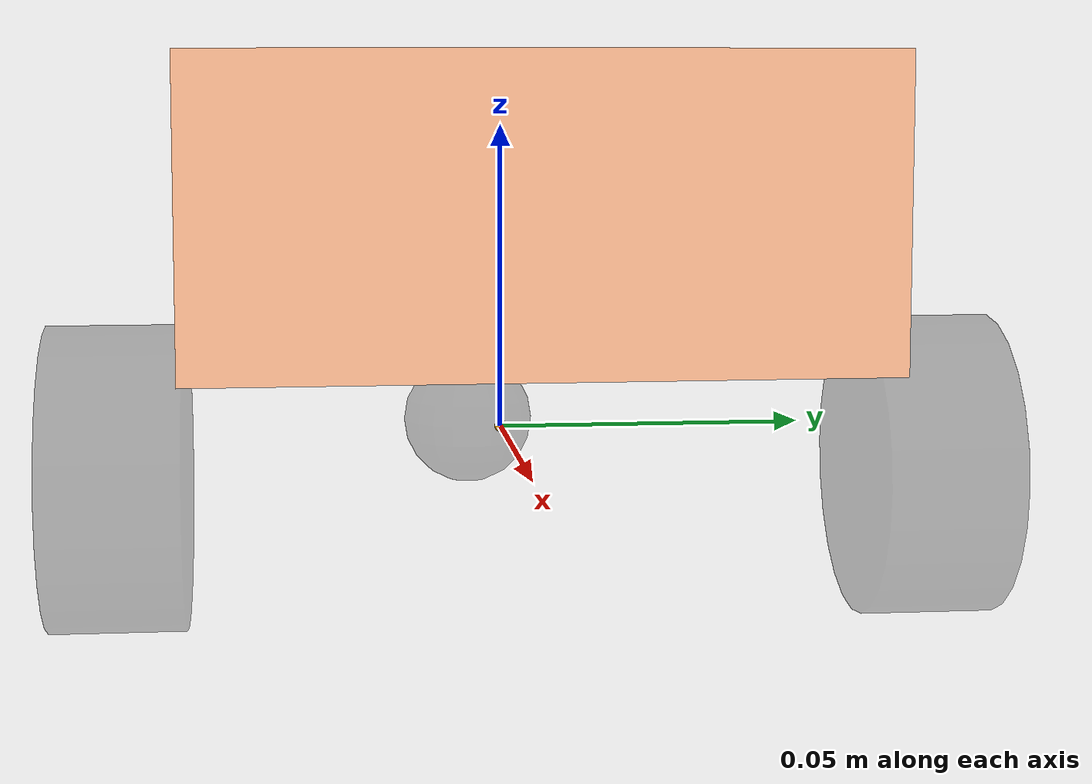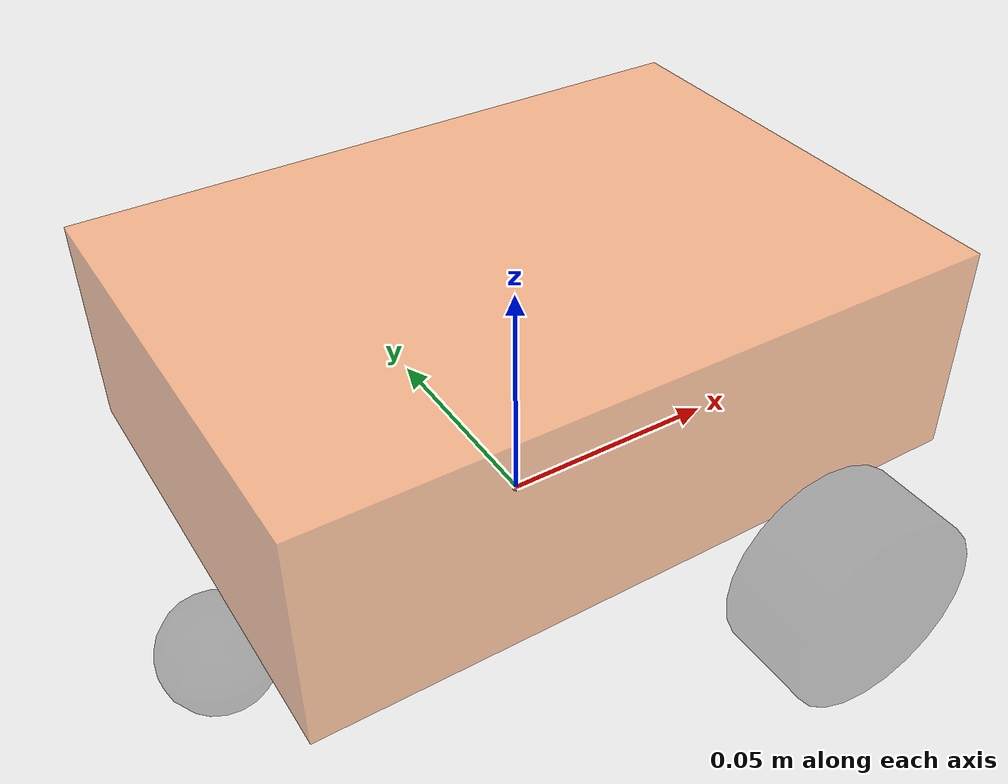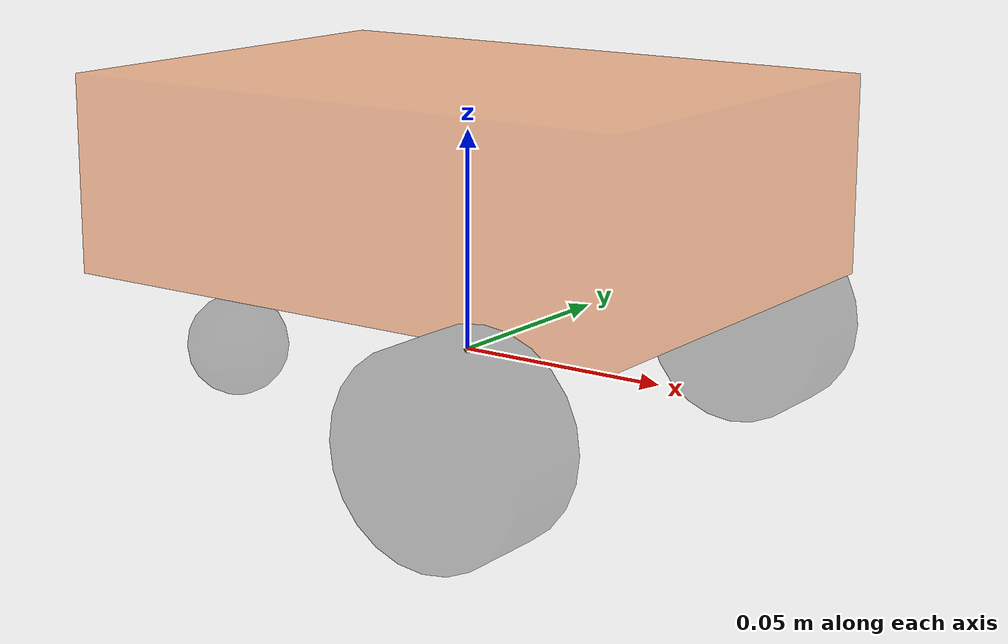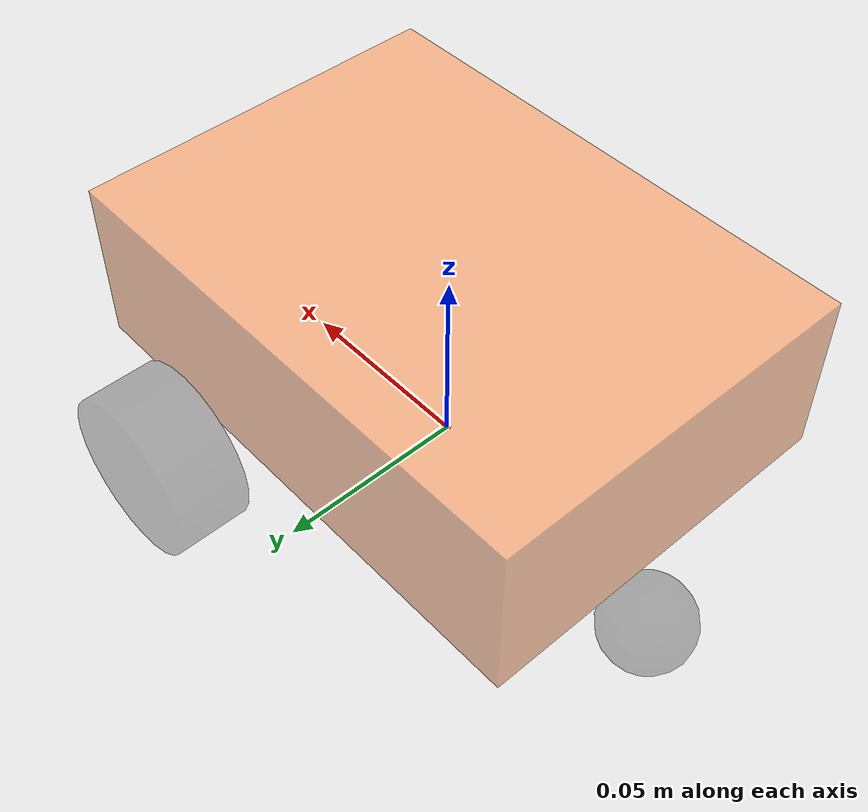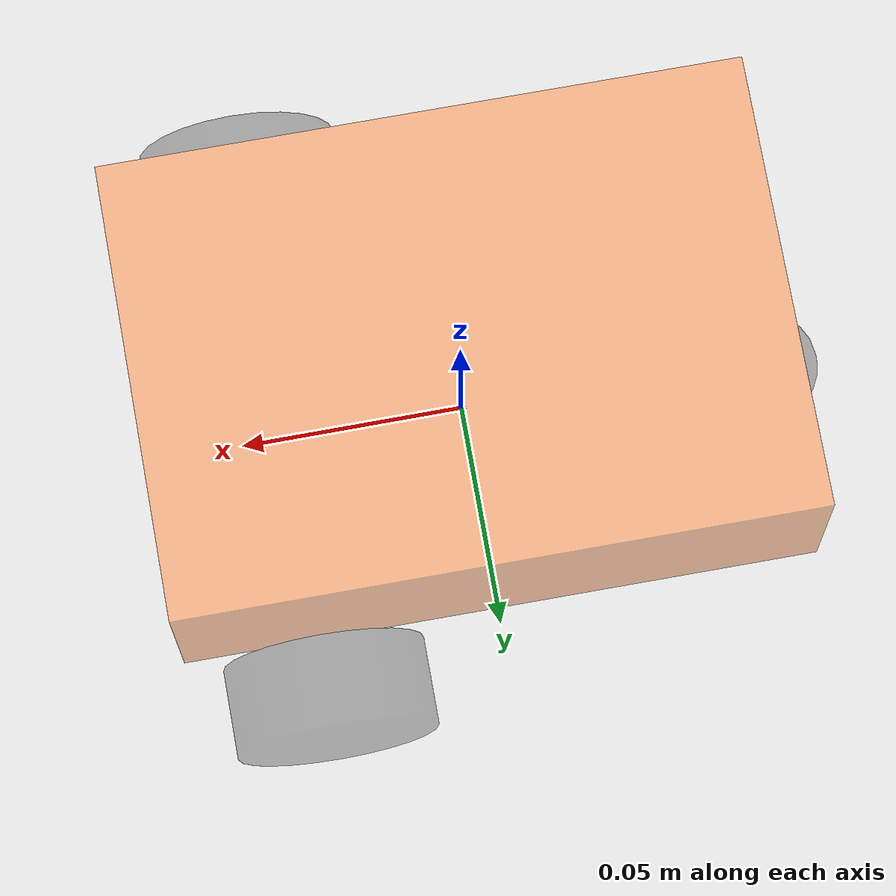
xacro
<robot name="mycar" xmlns:xacro="http://wiki.ros.org/xacro">

    <xacro:property name="footprint_radius" value="0.001" />
    <link name="base_footprint">
        <visual>
            <geometry>
                <sphere radius="${footprint_radius}" />
            </geometry>
        </visual>
    </link>

    <link name="base_link">
        <visual>
            <geometry>
                <box size="0.14 0.10 0.045" />
            </geometry>

            <origin xyz="0 0 0" rpy="0 0 0" />

            <material name="baselink_color">
                <color rgba="1.0 0.5 0.2 0.5" />
            </material>
        </visual>

    </link>

    <joint name="link2footprint" type="fixed">
        <parent link="base_footprint"  />
        <child link="base_link" />
        <origin xyz="0 0 0.04" rpy="0 0 0" />
    </joint>

    <xacro:property name="wheel_radius" value="0.0225" />
    <xacro:property name="wheel_length" value="0.02" />
    <xacro:property name="PI" value="3.1415927" />
    <xacro:property name="wheel_joint_z" value="${(0.045/2 + 0.04 - wheel_radius) * -1}" />

    <xacro:macro name="wheel_func" params="wheel_name flag">

        <link name="${wheel_name}_wheel">
            <visual>
                <geometry>
                    <cylinder radius="${wheel_radius}" length="${wheel_length}" />
                </geometry>

                <origin xyz="0 0 0" rpy="${PI / 2} 0 0" />

                <material name="wheel_color">
                    <color rgba="0 0 0 0.3" />
                </material>
            </visual>

        </link>

        <joint name="${wheel_name}2link" type="continuous">
            <parent link="base_link"  />
            <child link="${wheel_name}_wheel" />

            <origin xyz="0.04 ${0.06 * flag} ${wheel_joint_z}" rpy="0 0 0" />
            <axis xyz="0 1 0" />
        </joint>

    </xacro:macro>

    <xacro:wheel_func wheel_name="left" flag="1" />
    <xacro:wheel_func wheel_name="right" flag="-1" />

    <xacro:property name="small_wheel_radius" value="0.0125" />
    <xacro:property name="small_joint_z" value="${(0.045 / 2 + 0.04 - small_wheel_radius) * -1}" />

    <xacro:macro name="small_wheel_func" params="small_wheel_name flag">
        <link name="${small_wheel_name}_wheel">
            <visual>
                <geometry>
                    <sphere radius="${small_wheel_radius}" />
                </geometry>

                <origin xyz="0 0 0" rpy="0 0 0" />

                <material name="wheel_color">
                    <color rgba="0 0 0 0.3" />
                </material>
            </visual>

        </link>

        <joint name="${small_wheel_name}2link" type="continuous">
            <parent link="base_link"  />
            <child link="${small_wheel_name}_wheel" />

            <origin xyz="${0.07 * flag} 0 ${small_joint_z}" rpy="0 0 0" />
            <axis xyz="0 1 0" />
        </joint>

    </xacro:macro >
    <!--xacro:small_wheel_func small_wheel_name="front" flag="1"/ -->
    <xacro:small_wheel_func small_wheel_name="back" flag="-1"/>

</robot>
